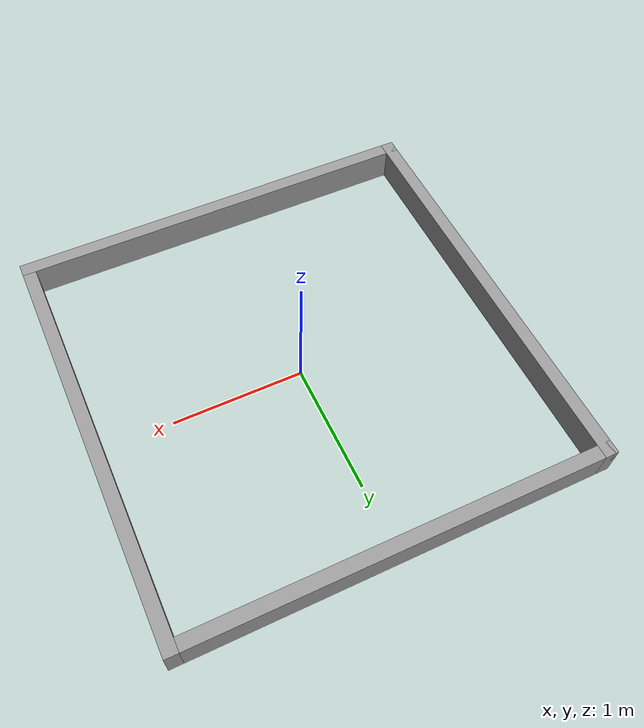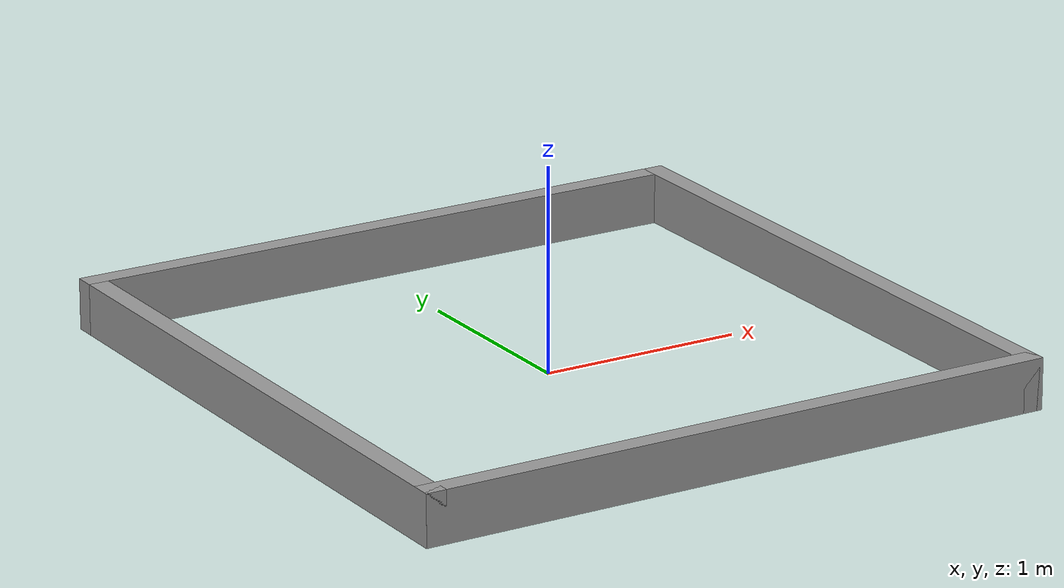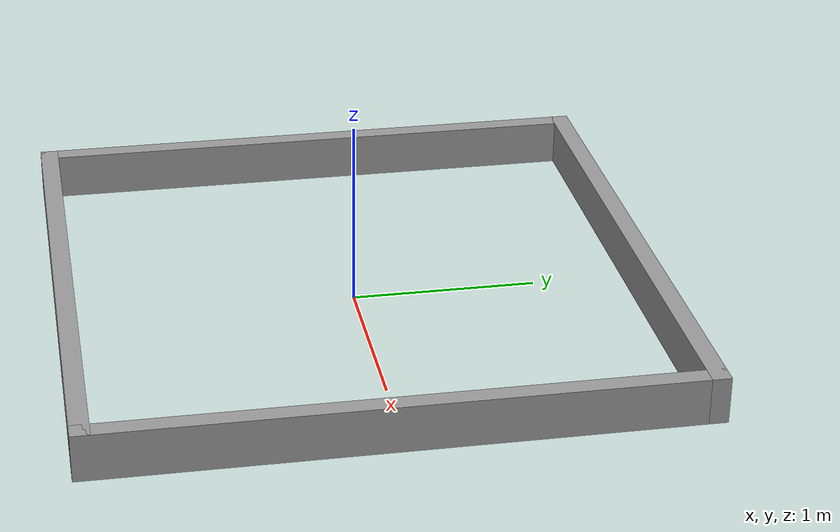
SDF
<?xml version='1.0'?>
<sdf version='1.6'>
  <model name='boundaries'>
    <pose frame=''>0.015305 -0.010393 0 0 -0 0</pose>
    <link name='Wall_10'>
      <collision name='Wall_10_Collision'>
        <geometry>
          <box>
            <size>3.2 0.1 0.25</size>
          </box>
        </geometry>
        <pose frame=''>0 0 0.15 0 -0 0</pose>
      </collision>
      <visual name='Wall_10_Visual'>
        <pose frame=''>0 0 0.15 0 -0 0</pose>
        <geometry>
          <box>
            <size>3.2 0.1 0.25</size>
          </box>
        </geometry>
        <material>
          <script>
            <uri>file://media/materials/scripts/gazebo.material</uri>
            <name>Gazebo/Grey</name>
          </script>
          <ambient>1 1 1 1</ambient>
        </material>
        <meta>
          <layer>0</layer>
        </meta>
      </visual>
      <pose frame=''>1.55 0 0 0 -0 1.5708</pose>
    </link>
    <link name='Wall_6'>
      <collision name='Wall_6_Collision'>
        <geometry>
          <box>
            <size>3.2 0.1 0.25</size>
          </box>
        </geometry>
        <pose frame=''>0 0 0.15 0 -0 0</pose>
      </collision>
      <visual name='Wall_6_Visual'>
        <pose frame=''>0 0 0.15 0 -0 0</pose>
        <geometry>
          <box>
            <size>3.2 0.1 0.25</size>
          </box>
        </geometry>
        <material>
          <script>
            <uri>file://media/materials/scripts/gazebo.material</uri>
            <name>Gazebo/Grey</name>
          </script>
          <ambient>1 1 1 1</ambient>
        </material>
        <meta>
          <layer>0</layer>
        </meta>
      </visual>
      <pose frame=''>0 1.55 0 0 -0 0</pose>
    </link>
    <link name='Wall_8'>
      <collision name='Wall_8_Collision'>
        <geometry>
          <box>
            <size>3.2 0.1 0.25</size>
          </box>
        </geometry>
        <pose frame=''>0 0 0.15 0 -0 0</pose>
      </collision>
      <visual name='Wall_8_Visual'>
        <pose frame=''>0 0 0.15 0 -0 0</pose>
        <geometry>
          <box>
            <size>3.2 0.1 0.25</size>
          </box>
        </geometry>
        <material>
          <script>
            <uri>file://media/materials/scripts/gazebo.material</uri>
            <name>Gazebo/Grey</name>
          </script>
          <ambient>1 1 1 1</ambient>
        </material>
        <meta>
          <layer>0</layer>
        </meta>
      </visual>
      <pose frame=''>-1.55 0 0 0 0 -1.5708</pose>
    </link>
    <link name='Wall_9'>
      <collision name='Wall_9_Collision'>
        <geometry>
          <box>
            <size>3.2 0.1 0.25</size>
          </box>
        </geometry>
        <pose frame=''>0 0 0.15 0 -0 0</pose>
      </collision>
      <visual name='Wall_9_Visual'>
        <pose frame=''>0 0 0.15 0 -0 0</pose>
        <geometry>
          <box>
            <size>3.2 0.1 0.25</size>
          </box>
        </geometry>
        <material>
          <script>
            <uri>file://media/materials/scripts/gazebo.material</uri>
            <name>Gazebo/Grey</name>
          </script>
          <ambient>1 1 1 1</ambient>
        </material>
        <meta>
          <layer>0</layer>
        </meta>
      </visual>
      <pose frame=''>0 -1.55 0 0 -0 0</pose>
    </link>
    <static>1</static>
  </model>
</sdf>
